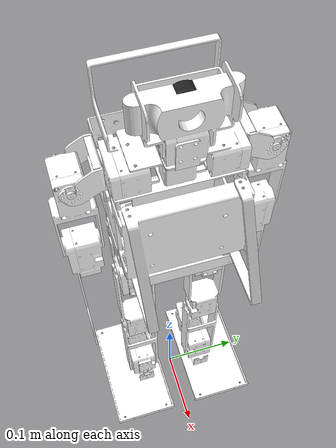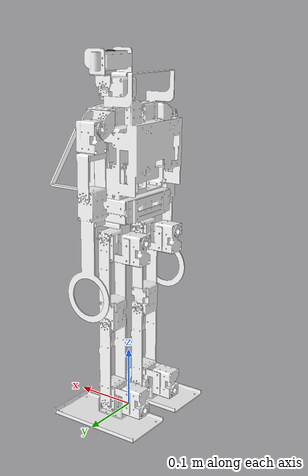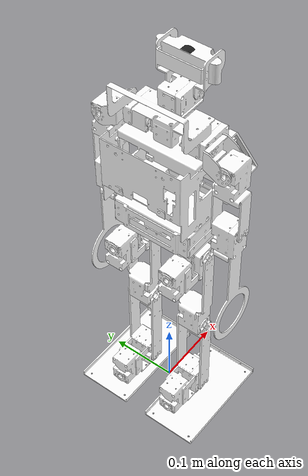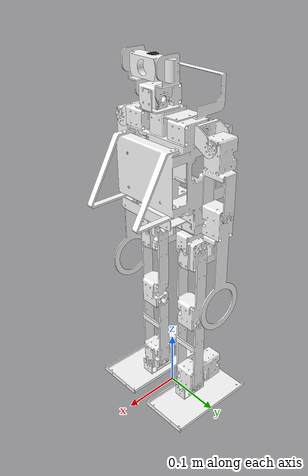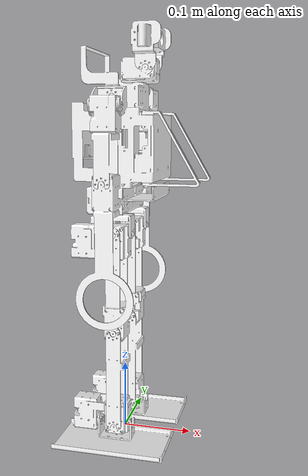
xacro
<?xml version="1.0"?>
<robot
  name="kidsize" xmlns:xacro="http://www.ros.org/wiki/xacro">
	<xacro:property name="pi" value="3.14159265359" />
	<xacro:property name="deg" value="${pi/180}" />
		<material name="black">
			<color rgba="0.1 0.1 0.1 1" />
		</material>
		<material name="white">
			<color rgba="0.8 0.8 0.8 1" />
		</material>
		<material name="clear">
			<color rgba="1.0 1.0 1.0 0.0" />
		</material>
		<material name="orange">
			<color rgba="${255/255} ${108/255} ${10/255} 1.0" />
		</material>
  <link
    name="waist_link">
    <inertial>
      <origin
        xyz="-0.010499 -4.8863E-05 0.35143"
        rpy="0 0 0" />
      <mass
        value="0.16736" />
      <inertia
        ixx="0.00024686"
        ixy="1.3146E-07"
        ixz="-2.4647E-06"
        iyy="8.0245E-05"
        iyz="1.7402E-08"
        izz="0.00028946" />
    </inertial>
    <visual>
      <origin
        xyz="0 0 0"
        rpy="0 0 0" />
      <geometry>
        <mesh
          filename="package://urdf/kidsize_model/robocup_robot/meshes/waist_link.STL" />
      </geometry>
      <material
        name="">
        <color
          rgba="1 1 1 1" />
      </material>
    </visual>
    <collision>
      <origin
        xyz="0 0 0"
        rpy="0 0 0" />
      <geometry>
        <mesh
          filename="package://urdf/kidsize_model/robocup_robot/meshes/waist_link.STL" />
      </geometry>
    </collision>
  </link>
  <link
    name="trunk_link">
    <inertial>
      <origin
        xyz="0.01024 0.00011325 0.070848"
        rpy="0 0 0" />
      <mass
        value="1" />
      <inertia
        ixx="0.0011025"
        ixy="2.5029E-06"
        ixz="6.7048E-05"
        iyy="0.00089946"
        iyz="2.1953E-07"
        izz="0.00071841" />
    </inertial>
    <visual>
      <origin
        xyz="0 0 0"
        rpy="0 0 0" />
      <geometry>
        <mesh
          filename="package://urdf/kidsize_model/robocup_robot/meshes/trunk_link.STL" />
      </geometry>
      <material
        name="">
        <color
          rgba="1 1 1 1" />
      </material>
    </visual>
    <collision>
      <origin
        xyz="0 0 0"
        rpy="0 0 0" />
      <geometry>
        <mesh
          filename="package://urdf/kidsize_model/robocup_robot/meshes/trunk_link.STL" />
      </geometry>
    </collision>
  </link>
  <joint
    name="waist_yaw_joint"
    type="revolute">
    <origin
      xyz="-0.00045 0 0.3865"
      rpy="0 0 0" />
    <parent
      link="waist_link" />
    <child
      link="trunk_link" />
    <axis
      xyz="0 0 1" />
    <limit
      lower="${-pi}"
      upper="${pi}"
      effort="100"
      velocity="5" />
    <dynamics
      friction="0.7"
      damping="0.1" />
  </joint>
  <link
    name="left_shoulder_link">
    <inertial>
      <origin
        xyz="-3.72604127105386E-06 0.0297911074033573 -0.00461915163355214"
        rpy="0 0 0" />
      <mass
        value="0.00596009981158904" />
      <inertia
        ixx="1.26246219599389E-06"
        ixy="-1.72427552349869E-11"
        ixz="6.85742889803387E-12"
        iyy="2.28404971724678E-06"
        iyz="3.17827997088839E-07"
        izz="2.37194480329819E-06" />
    </inertial>
    <visual>
      <origin
        xyz="0 0 0"
        rpy="0 0 0" />
      <geometry>
        <mesh
          filename="package://urdf/kidsize_model/robocup_robot/meshes/left_shoulder_link.STL" />
      </geometry>
      <material
        name="">
        <color
          rgba="1 1 1 1" />
      </material>
    </visual>
    <collision>
      <origin
        xyz="0 0 0"
        rpy="0 0 0" />
      <geometry>
        <mesh
          filename="package://urdf/kidsize_model/robocup_robot/meshes/left_shoulder_link.STL" />
      </geometry>
    </collision>
  </link>
  <joint
    name="left_shoulder_pitch_joint"
    type="revolute">
    <origin
      xyz="0 0.043997 0.10474"
      rpy="0 0 0" />
    <parent
      link="trunk_link" />
    <child
      link="left_shoulder_link" />
    <axis
      xyz="0 1 0" />
    <limit
      lower="${-pi}"
      upper="${pi}"
      effort="100"
      velocity="5" />
    <dynamics
      friction="0.7"
      damping="0.1" />
  </joint>
  <link
    name="left_upper_arm_link">
    <inertial>
      <origin
        xyz="0.000678411211435796 0.000489810124291307 -0.0191217777296809"
        rpy="0 0 0" />
      <mass
        value="0.0510794115590112" />
      <inertia
        ixx="3.1313340207507E-05"
        ixy="-6.57973357844028E-12"
        ixz="-3.53618283019284E-07"
        iyy="3.06157554760573E-05"
        iyz="2.63047056443396E-10"
        izz="9.80852784205324E-06" />
    </inertial>
    <visual>
      <origin
        xyz="0 0 0"
        rpy="0 0 0" />
      <geometry>
        <mesh
          filename="package://urdf/kidsize_model/robocup_robot/meshes/left_upper_arm_link.STL" />
      </geometry>
      <material
        name="">
        <color
          rgba="1 1 1 1" />
      </material>
    </visual>
    <collision>
      <origin
        xyz="0 0 0"
        rpy="0 0 0" />
      <geometry>
        <mesh
          filename="package://urdf/kidsize_model/robocup_robot/meshes/left_upper_arm_link.STL" />
      </geometry>
    </collision>
  </link>
  <joint
    name="left_upper_arm_roll_joint"
    type="revolute">
    <origin
      xyz="0 0.04851 -0.011774"
      rpy="0 0 0" />
    <parent
      link="left_shoulder_link" />
    <child
      link="left_upper_arm_link" />
    <axis
      xyz="1 0 0" />
    <limit
      lower="${-pi}"
      upper="${pi}"
      effort="100"
      velocity="5" />
    <dynamics
      friction="0.7"
      damping="0.1" />
  </joint>
  <link
    name="left_elbow_link">
    <inertial>
      <origin
        xyz="-0.000489816928373502 0.0024374519516502 -0.0293208681909612"
        rpy="0 0 0" />
      <mass
        value="0.0529778400197291" />
      <inertia
        ixx="0.000109530121626401"
        ixy="2.36402125251114E-11"
        ixz="-3.61965391083585E-10"
        iyy="0.000110422928141888"
        iyz="7.78807652504947E-06"
        izz="1.08976885049728E-05" />
    </inertial>
    <visual>
      <origin
        xyz="0 0 0"
        rpy="0 0 0" />
      <geometry>
        <mesh
          filename="package://urdf/kidsize_model/robocup_robot/meshes/left_botton_arm_link.STL" />
      </geometry>
      <material
        name="">
        <color
          rgba="1 1 1 1" />
      </material>
    </visual>
    <collision>
      <origin
        xyz="0 0 0"
        rpy="0 0 0" />
      <geometry>
        <mesh
          filename="package://urdf/kidsize_model/robocup_robot/meshes/left_botton_arm_link.STL" />
      </geometry>
    </collision>
  </link>
  <joint
    name="left_elbow_pitch_joint"
    type="revolute">
    <origin
      xyz="0.00049 0.00049 -0.10025"
      rpy="0 0 0" />
    <parent
      link="left_upper_arm_link" />
    <child
      link="left_elbow_link" />
    <axis
      xyz="0 1 0" />
    <limit
      lower="${-pi}"
      upper="${pi}"
      effort="100"
      velocity="5" />
    <dynamics
      friction="0.7"
      damping="0.1" />
  </joint>
  <link
    name="right_shoulder_link">
    <inertial>
      <origin
        xyz="3.7260412035388E-06 -0.0297911074033573 -0.00363915163355155"
        rpy="0 0 0" />
      <mass
        value="0.005960099811589" />
      <inertia
        ixx="1.26246219599387E-06"
        ixy="-1.72427551985748E-11"
        ixz="-6.85742905110232E-12"
        iyy="2.28404971724675E-06"
        iyz="-3.17827997088837E-07"
        izz="2.37194480329818E-06" />
    </inertial>
    <visual>
      <origin
        xyz="0 0 0"
        rpy="0 0 0" />
      <geometry>
        <mesh
          filename="package://urdf/kidsize_model/robocup_robot/meshes/right_shoulder_link.STL" />
      </geometry>
      <material
        name="">
        <color
          rgba="1 1 1 1" />
      </material>
    </visual>
    <collision>
      <origin
        xyz="0 0 0"
        rpy="0 0 0" />
      <geometry>
        <mesh
          filename="package://urdf/kidsize_model/robocup_robot/meshes/right_shoulder_link.STL" />
      </geometry>
    </collision>
  </link>
  <joint
    name="right_shoulder_pitch_joint"
    type="revolute">
    <origin
      xyz="0 -0.044003 0.10376"
      rpy="0 0 0" />
    <parent
      link="trunk_link" />
    <child
      link="right_shoulder_link" />
    <axis
      xyz="0 -1 0" />
    <limit
      lower="${-pi}"
      upper="${pi}"
      effort="100"
      velocity="5" />
    <dynamics
      friction="0.7"
      damping="0.1" />
  </joint>
  <link
    name="right_upper_arm_link">
    <inertial>
      <origin
        xyz="0.000678411211443852 -0.000490189875708882 -0.0191217777296777"
        rpy="0 0 0" />
      <mass
        value="0.0510794115590111" />
      <inertia
        ixx="3.13133402075077E-05"
        ixy="-6.57973359766917E-12"
        ixz="-3.53618283010164E-07"
        iyy="3.06157554760577E-05"
        iyz="2.63047055845698E-10"
        izz="9.80852784205294E-06" />
    </inertial>
    <visual>
      <origin
        xyz="0 0 0"
        rpy="0 0 0" />
      <geometry>
        <mesh
          filename="package://urdf/kidsize_model/robocup_robot/meshes/right_upper_arm_link.STL" />
      </geometry>
      <material
        name="">
        <color
          rgba="1 1 1 1" />
      </material>
    </visual>
    <collision>
      <origin
        xyz="0 0 0"
        rpy="0 0 0" />
      <geometry>
        <mesh
          filename="package://urdf/kidsize_model/robocup_robot/meshes/right_upper_arm_link.STL" />
      </geometry>
    </collision>
  </link>
  <joint
    name="right_upper_arm_roll_joint"
    type="revolute">
    <origin
      xyz="0 -0.04851 -0.010794"
      rpy="0 0 0" />
    <parent
      link="right_shoulder_link" />
    <child
      link="right_upper_arm_link" />
    <axis
      xyz="1 0 0" />
    <limit
      lower="${-pi}"
      upper="${pi}"
      effort="100"
      velocity="5" />
    <dynamics
      friction="0.7"
      damping="0.1" />
  </joint>
  <link
    name="right_elbow_link">
    <inertial>
      <origin
        xyz="0.000489816928379138 -0.00243745195164802 -0.0293208681909606"
        rpy="0 0 0" />
      <mass
        value="0.052977840019729" />
      <inertia
        ixx="0.0001095301216264"
        ixy="2.36402135704461E-11"
        ixz="3.61965404306589E-10"
        iyy="0.000110422928141886"
        iyz="-7.78807652505102E-06"
        izz="1.0897688504973E-05" />
    </inertial>
    <visual>
      <origin
        xyz="0 0 0"
        rpy="0 0 0" />
      <geometry>
        <mesh
          filename="package://urdf/kidsize_model/robocup_robot/meshes/right_bottom_arm_link.STL" />
      </geometry>
      <material
        name="">
        <color
          rgba="1 1 1 1" />
      </material>
    </visual>
    <collision>
      <origin
        xyz="0 0 0"
        rpy="0 0 0" />
      <geometry>
        <mesh
          filename="package://urdf/kidsize_model/robocup_robot/meshes/right_bottom_arm_link.STL" />
      </geometry>
    </collision>
  </link>
  <joint
    name="right_elbow_pitch_joint"
    type="revolute">
    <origin
      xyz="-0.00049 -0.00049 -0.10025"
      rpy="0 0 0" />
    <parent
      link="right_upper_arm_link" />
    <child
      link="right_elbow_link" />
    <axis
      xyz="0 -1 0" />
    <limit
      lower="${-pi}"
      upper="${pi}"
      effort="100"
      velocity="5" />
    <dynamics
      friction="0.7"
      damping="0.1" />
  </joint>
  <link
    name="neck_link">
    <inertial>
      <origin
        xyz="0.00201687473330259 -0.0012115472181778 0.036708354964159"
        rpy="0 0 0" />
      <mass
        value="0.0480257488384161" />
      <inertia
        ixx="8.32535476251775E-06"
        ixy="9.75804509458229E-08"
        ixz="-9.52075626558979E-09"
        iyy="1.34941975576473E-05"
        iyz="4.47591758359128E-08"
        izz="1.41502914655468E-05" />
    </inertial>
    <visual>
      <origin
        xyz="0 0 0"
        rpy="0 0 0" />
      <geometry>
        <mesh
          filename="package://urdf/kidsize_model/robocup_robot/meshes/neck_link.STL" />
      </geometry>
      <material
        name="">
        <color
          rgba="1 1 1 1" />
      </material>
    </visual>
    <collision>
      <origin
        xyz="0 0 0"
        rpy="0 0 0" />
      <geometry>
        <mesh
          filename="package://urdf/kidsize_model/robocup_robot/meshes/neck_link.STL" />
      </geometry>
    </collision>
  </link>
  <joint
    name="neck_yaw_joint"
    type="revolute">
    <origin
      xyz="0.021 0.00048672 0.107"
      rpy="0 0 0" />
    <parent
      link="trunk_link" />
    <child
      link="neck_link" />
    <axis
      xyz="0 0 1" />
    <limit
      lower="${-pi}"
      upper="${pi}"
      effort="100"
      velocity="5" />
    <dynamics
      friction="0.7"
      damping="0.1" />
  </joint>
  <link
    name="head_link">
    <inertial>
      <origin
        xyz="0.00279758860877225 -0.000166576430221316 0.0369137134187916"
        rpy="0 0 0" />
      <mass
        value="0.0547968386535072" />
      <inertia
        ixx="3.708393532027E-05"
        ixy="1.27051933602407E-08"
        ixz="-3.34075520714619E-07"
        iyy="9.72906306189788E-06"
        iyz="1.48193099247116E-08"
        izz="3.49367049594159E-05" />
    </inertial>
    <visual>
      <origin
        xyz="0 0 0"
        rpy="0 0 0" />
      <geometry>
        <mesh
          filename="package://urdf/kidsize_model/robocup_robot/meshes/head_link.STL" />
      </geometry>
      <material
        name="">
        <color
          rgba="1 1 1 1" />
      </material>
    </visual>
    <collision>
      <origin
        xyz="0 0 0"
        rpy="0 0 0" />
      <geometry>
        <mesh
          filename="package://urdf/kidsize_model/robocup_robot/meshes/head_link.STL" />
      </geometry>
    </collision>
  </link>
  <joint
    name="head_pitch_joint"
    type="revolute">
    <origin
      xyz="0.01375 -0.00049 0.03849"
      rpy="0 0 0" />
    <parent
      link="neck_link" />
    <child
      link="head_link" />
    <axis
      xyz="0 -1 0" />
    <limit
      lower="${-pi}"
      upper="${pi}"
      effort="100"
      velocity="5" />
    <dynamics
      friction="0.7"
      damping="0.1" />
  </joint>
  <link
    name="left_hip_yaw_link">
    <inertial>
      <origin
        xyz="-0.00211352320941255 4.88081478997038E-07 -0.0265544284135782"
        rpy="0 0 0" />
      <mass
        value="0.0144640349261772" />
      <inertia
        ixx="1.95724733538057E-06"
        ixy="4.58987327610197E-12"
        ixz="6.50767372021941E-09"
        iyy="5.96616991854585E-06"
        iyz="-3.51749711365673E-10"
        izz="5.96957701911896E-06" />
    </inertial>
    <visual>
      <origin
        xyz="0 0 0"
        rpy="0 0 0" />
      <geometry>
        <mesh
          filename="package://urdf/kidsize_model/robocup_robot/meshes/left_hip_yaw_link.STL" />
      </geometry>
      <material
        name="">
        <color
          rgba="1 1 1 1" />
      </material>
    </visual>
    <collision>
      <origin
        xyz="0 0 0"
        rpy="0 0 0" />
      <geometry>
        <mesh
          filename="package://urdf/kidsize_model/robocup_robot/meshes/left_hip_yaw_link.STL" />
      </geometry>
    </collision>
  </link>
  <joint
    name="left_hip_yaw_joint"
    type="revolute">
    <origin
      xyz="5E-05 0.043997 0.3515"
      rpy="0 0 0" />
    <parent
      link="waist_link" />
    <child
      link="left_hip_yaw_link" />
    <axis
      xyz="0 0 -1" />
    <limit
      lower="${-pi}"
      upper="${pi}"
      effort="100"
      velocity="5" />
    <dynamics
      friction="0.7"
      damping="0.1" />
  </joint>
  <link
    name="left_hip_roll_link">
    <inertial>
      <origin
        xyz="0.0240821846618702 0.000375718387425061 -0.0118862254520091"
        rpy="0 0 0" />
      <mass
        value="0.0930179630649924" />
      <inertia
        ixx="2.44594850592089E-05"
        ixy="-7.33758600797145E-07"
        ixz="-2.98512780056426E-07"
        iyy="7.10126175528167E-05"
        iyz="-1.02692936689928E-07"
        izz="6.18808778005977E-05" />
    </inertial>
    <visual>
      <origin
        xyz="0 0 0"
        rpy="0 0 0" />
      <geometry>
        <mesh
          filename="package://urdf/kidsize_model/robocup_robot/meshes/left_hip_roll_link.STL" />
      </geometry>
      <material
        name="">
        <color
          rgba="1 1 1 1" />
      </material>
    </visual>
    <collision>
      <origin
        xyz="0 0 0"
        rpy="0 0 0" />
      <geometry>
        <mesh
          filename="package://urdf/kidsize_model/robocup_robot/meshes/left_hip_roll_link.STL" />
      </geometry>
    </collision>
  </link>
  <joint
    name="left_hip_roll_joint"
    type="revolute">
    <origin
      xyz="-0.04575 0 -0.04592"
      rpy="0 0 0" />
    <parent
      link="left_hip_yaw_link" />
    <child
      link="left_hip_roll_link" />
    <axis
      xyz="1 0 0" />
    <limit
      lower="${-pi}"
      upper="${pi}"
      effort="100"
      velocity="5" />
    <dynamics
      friction="0.7"
      damping="0.1" />
  </joint>
  <link
    name="left_thigh_link">
    <inertial>
      <origin
        xyz="3.51695302039302E-05 0.000384502459421676 -0.110700224525888"
        rpy="0 0 0" />
      <mass
        value="0.0608305695796996" />
      <inertia
        ixx="8.45358036696472E-05"
        ixy="-6.41631917623483E-10"
        ixz="6.22630915145868E-08"
        iyy="7.86582372896446E-05"
        iyz="5.07778819497434E-07"
        izz="1.38630750590701E-05" />
    </inertial>
    <visual>
      <origin
        xyz="0 0 0"
        rpy="0 0 0" />
      <geometry>
        <mesh
          filename="package://urdf/kidsize_model/robocup_robot/meshes/left_thigh_link.STL" />
      </geometry>
      <material
        name="">
        <color
          rgba="1 1 1 1" />
      </material>
    </visual>
    <collision>
      <origin
        xyz="0 0 0"
        rpy="0 0 0" />
      <geometry>
        <mesh
          filename="package://urdf/kidsize_model/robocup_robot/meshes/left_thigh_link.STL" />
      </geometry>
    </collision>
  </link>
  <joint
    name="left_hip_pitch_joint"
    type="revolute">
    <origin
      xyz="0.045253 0 0"
      rpy="0 0 0" />
    <parent
      link="left_hip_roll_link" />
    <child
      link="left_thigh_link" />
    <axis
      xyz="0 1 0" />
    <limit
      lower="${-pi}"
      upper="${pi}"
      effort="100"
      velocity="5" />
    <dynamics
      friction="0.7"
      damping="0.1" />
  </joint>
  <link
    name="left_shank_link">
    <inertial>
      <origin
        xyz="0.00135328032358438 -9.71445146547012E-16 -0.0684049310334947"
        rpy="0 0 0" />
      <mass
        value="0.0185165645195991" />
      <inertia
        ixx="3.5227906280466E-05"
        ixy="-2.04289483564695E-20"
        ixz="-3.5731593672538E-07"
        iyy="2.86224717603839E-05"
        iyz="-2.35182737318463E-19"
        izz="8.29639288223421E-06" />
    </inertial>
    <visual>
      <origin
        xyz="0 0 0"
        rpy="0 0 0" />
      <geometry>
        <mesh
          filename="package://urdf/kidsize_model/robocup_robot/meshes/left_shank_link.STL" />
      </geometry>
      <material
        name="">
        <color
          rgba="1 1 1 1" />
      </material>
    </visual>
    <collision>
      <origin
        xyz="0 0 0"
        rpy="0 0 0" />
      <geometry>
        <mesh
          filename="package://urdf/kidsize_model/robocup_robot/meshes/left_shank_link.STL" />
      </geometry>
    </collision>
  </link>
  <joint
    name="left_knee_pitch_joint"
    type="revolute">
    <origin
      xyz="-0.00043078 -0.0002634 -0.14"
      rpy="0 0 0" />
    <parent
      link="left_thigh_link" />
    <child
      link="left_shank_link" />
    <axis
      xyz="0 1 0" />
    <limit
      lower="${-pi}"
      upper="${pi}"
      effort="100"
      velocity="5" />
    <dynamics
      friction="0.7"
      damping="0.1" />
  </joint>
  <link
    name="left_ankle_link">
    <inertial>
      <origin
        xyz="-0.0219569888159379 0.00038538235922847 0.0119419740261193"
        rpy="0 0 0" />
      <mass
        value="0.0899432560542777" />
      <inertia
        ixx="2.38656072716007E-05"
        ixy="-7.77630874358381E-07"
        ixz="1.02521827360255E-07"
        iyy="6.60530411092164E-05"
        iyz="1.05011066744187E-07"
        izz="5.73342777001997E-05" />
    </inertial>
    <visual>
      <origin
        xyz="0 0 0"
        rpy="0 0 0" />
      <geometry>
        <mesh
          filename="package://urdf/kidsize_model/robocup_robot/meshes/left_ankle_link.STL" />
      </geometry>
      <material
        name="">
        <color
          rgba="1 1 1 1" />
      </material>
    </visual>
    <collision>
      <origin
        xyz="0 0 0"
        rpy="0 0 0" />
      <geometry>
        <mesh
          filename="package://urdf/kidsize_model/robocup_robot/meshes/left_ankle_link.STL" />
      </geometry>
    </collision>
  </link>
  <joint
    name="left_ankle_pitch_joint"
    type="revolute">
    <origin
      xyz="-6.2501E-05 0 -0.14"
      rpy="0 0 0" />
    <parent
      link="left_shank_link" />
    <child
      link="left_ankle_link" />
    <axis
      xyz="0 1 0" />
    <limit
      lower="${-pi}"
      upper="${pi}"
      effort="100"
      velocity="5" />
    <dynamics
      friction="0.7"
      damping="0.1" />
  </joint>
  <link
    name="left_foot_link">
    <inertial>
      <origin
        xyz="0.046660793206198 0.0137594635413675 -0.023028116308786"
        rpy="0 0 0" />
      <mass
        value="0.0356470366355454" />
      <inertia
        ixx="2.42742010000648E-05"
        ixy="-1.8395096882967E-07"
        ixz="-4.8220679118982E-07"
        iyy="7.46265449790505E-05"
        iyz="3.97748194719772E-07"
        izz="9.7840186920826E-05" />
    </inertial>
    <visual>
      <origin
        xyz="0 0 0"
        rpy="0 0 0" />
      <geometry>
        <mesh
          filename="package://urdf/kidsize_model/robocup_robot/meshes/left_foot_link.STL" />
      </geometry>
      <material
        name="">
        <color
          rgba="1 1 1 1" />
      </material>
    </visual>
    <collision>
      <origin
        xyz="0 0 0"
        rpy="0 0 0" />
      <geometry>
        <mesh
          filename="package://urdf/kidsize_model/robocup_robot/meshes/left_foot_link.STL" />
      </geometry>
    </collision>
  </link>
  <joint
    name="left_ankle_roll_joint"
    type="revolute">
    <origin
      xyz="-0.04476 0.00049 0"
      rpy="0 0 0" />
    <parent
      link="left_ankle_link" />
    <child
      link="left_foot_link" />
    <axis
      xyz="1 0 0" />
    <limit
      lower="${-pi}"
      upper="${pi}"
      effort="100"
      velocity="5" />
    <dynamics
      friction="0.7"
      damping="0.1" />
  </joint>
  <link
    name="right_hip_yaw_link">
    <inertial>
      <origin
        xyz="0 0 0"
        rpy="0 0 0" />
      <mass
        value="0.0144640349261772" />
      <inertia
        ixx="1.95724733538057E-06"
        ixy="4.58987327610197E-12"
        ixz="6.50767372021941E-09"
        iyy="5.96616991854585E-06"
        iyz="-3.51749711365673E-10"
        izz="5.96957701911896E-06" />
    </inertial>
    <visual>
      <origin
        xyz="0 0 0"
        rpy="0 0 0" />
      <geometry>
        <mesh
          filename="package://urdf/kidsize_model/robocup_robot/meshes/right_hip_yaw_link.STL" />
      </geometry>
      <material
        name="">
        <color
          rgba="1 1 1 1" />
      </material>
    </visual>
    <collision>
      <origin
        xyz="0 0 0"
        rpy="0 0 0" />
      <geometry>
        <mesh
          filename="package://urdf/kidsize_model/robocup_robot/meshes/right_hip_yaw_link.STL" />
      </geometry>
    </collision>
  </link>
  <joint
    name="right_hip_yaw_joint"
    type="revolute">
    <origin
      xyz="5E-05 -0.04401 0.3515"
      rpy="0 0 0" />
    <parent
      link="waist_link" />
    <child
      link="right_hip_yaw_link" />
    <axis
      xyz="0 0 -1" />
    <limit
      lower="${-pi}"
      upper="${pi}"
      effort="100"
      velocity="5" />
    <dynamics
      friction="0.7"
      damping="0.1" />
  </joint>
  <link
    name="right_hip_roll_link">
    <inertial>
      <origin
        xyz="0.024081976127104 -0.00036936018306593 -0.0118862254520065"
        rpy="0 0 0" />
      <mass
        value="0.0930179630649925" />
      <inertia
        ixx="2.4459470606564E-05"
        ixy="7.3329869546593E-07"
        ixz="-2.98127037426519E-07"
        iyy="7.10117963442653E-05"
        iyz="1.0307867932841E-07"
        izz="6.18800421393998E-05" />
    </inertial>
    <visual>
      <origin
        xyz="0 0 0"
        rpy="0 0 0" />
      <geometry>
        <mesh
          filename="package://urdf/kidsize_model/robocup_robot/meshes/right_hip_roll_link.STL" />
      </geometry>
      <material
        name="">
        <color
          rgba="1 1 1 1" />
      </material>
    </visual>
    <collision>
      <origin
        xyz="0 0 0"
        rpy="0 0 0" />
      <geometry>
        <mesh
          filename="package://urdf/kidsize_model/robocup_robot/meshes/right_hip_roll_link.STL" />
      </geometry>
    </collision>
  </link>
  <joint
    name="right_hip_roll_joint"
    type="revolute">
    <origin
      xyz="-0.04575 0 -0.04592"
      rpy="0 0 0" />
    <parent
      link="right_hip_yaw_link" />
    <child
      link="right_hip_roll_link" />
    <axis
      xyz="1 0 0" />
    <limit
      lower="${-pi}"
      upper="${pi}"
      effort="100"
      velocity="5" />
    <dynamics
      friction="0.7"
      damping="0.1" />
  </joint>
  <link
    name="right_thigh_link">
    <inertial>
      <origin
        xyz="9.14754809194412E-05 -0.000384502459423813 -0.110700196327749"
        rpy="0 0 0" />
      <mass
        value="0.0608305695796996" />
      <inertia
        ixx="8.45357339916312E-05"
        ixy="8.55753882403168E-10"
        ixz="9.45372250016478E-08"
        iyy="7.86582387237903E-05"
        iyz="-5.07778482451333E-07"
        izz="1.38631461712319E-05" />
    </inertial>
    <visual>
      <origin
        xyz="0 0 0"
        rpy="0 0 0" />
      <geometry>
        <mesh
          filename="package://urdf/kidsize_model/robocup_robot/meshes/right_thigh_link.STL" />
      </geometry>
      <material
        name="">
        <color
          rgba="1 1 1 1" />
      </material>
    </visual>
    <collision>
      <origin
        xyz="0 0 0"
        rpy="0 0 0" />
      <geometry>
        <mesh
          filename="package://urdf/kidsize_model/robocup_robot/meshes/right_thigh_link.STL" />
      </geometry>
    </collision>
  </link>
  <joint
    name="right_hip_pitch_joint"
    type="revolute">
    <origin
      xyz="0.045247 0 0"
      rpy="0 0 0" />
    <parent
      link="right_hip_roll_link" />
    <child
      link="right_thigh_link" />
    <axis
      xyz="0 -1 0" />
    <limit
      lower="${-pi}"
      upper="${pi}"
      effort="100"
      velocity="5" />
    <dynamics
      friction="0.7"
      damping="0.1" />
  </joint>
  <link
    name="right_shank_link">
    <inertial>
      <origin
        xyz="0.000890535102586326 -8.74300631892311E-16 -0.0684043200665534"
        rpy="0 0 0" />
      <mass
        value="0.0185165645195991" />
      <inertia
        ixx="3.52282199488241E-05"
        ixy="2.76811973081332E-20"
        ixz="-3.45292653644865E-07"
        iyy="2.8622471760384E-05"
        iyz="-1.62430685259345E-19"
        izz="8.29607921387611E-06" />
    </inertial>
    <visual>
      <origin
        xyz="0 0 0"
        rpy="0 0 0" />
      <geometry>
        <mesh
          filename="package://urdf/kidsize_model/robocup_robot/meshes/right_shank_link.STL" />
      </geometry>
      <material
        name="">
        <color
          rgba="1 1 1 1" />
      </material>
    </visual>
    <collision>
      <origin
        xyz="0 0 0"
        rpy="0 0 0" />
      <geometry>
        <mesh
          filename="package://urdf/kidsize_model/robocup_robot/meshes/right_shank_link.STL" />
      </geometry>
    </collision>
  </link>
  <joint
    name="right_knee_pitch_joint"
    type="revolute">
    <origin
      xyz="0.00013157 0.0002634 -0.14"
      rpy="0 0 0" />
    <parent
      link="right_thigh_link" />
    <child
      link="right_shank_link" />
    <axis
      xyz="0 -1 0" />
    <limit
      lower="${-pi}"
      upper="${pi}"
      effort="100"
      velocity="5" />
    <dynamics
      friction="0.7"
      damping="0.1" />
  </joint>
  <link
    name="right_ankle_link">
    <inertial>
      <origin
        xyz="-0.0211710987076901 -0.000372435017864603 0.0118862254520089"
        rpy="0 0 0" />
      <mass
        value="0.0930179630649924" />
      <inertia
        ixx="2.44594850592089E-05"
        ixy="7.33758600796815E-07"
        ixz="2.98512780055937E-07"
        iyy="7.10126175528155E-05"
        iyz="-1.02692936689923E-07"
        izz="6.18808778005966E-05" />
    </inertial>
    <visual>
      <origin
        xyz="0 0 0"
        rpy="0 0 0" />
      <geometry>
        <mesh
          filename="package://urdf/kidsize_model/robocup_robot/meshes/right_ankle_link.STL" />
      </geometry>
      <material
        name="">
        <color
          rgba="1 1 1 1" />
      </material>
    </visual>
    <collision>
      <origin
        xyz="0 0 0"
        rpy="0 0 0" />
      <geometry>
        <mesh
          filename="package://urdf/kidsize_model/robocup_robot/meshes/right_ankle_link.STL" />
      </geometry>
    </collision>
  </link>
  <joint
    name="right_ankle_pitch_joint"
    type="revolute">
    <origin
      xyz="0 0 -0.14"
      rpy="0 0 0" />
    <parent
      link="right_shank_link" />
    <child
      link="right_ankle_link" />
    <axis
      xyz="0 -1 0" />
    <limit
      lower="${-pi}"
      upper="${pi}"
      effort="100"
      velocity="5" />
    <dynamics
      friction="0.7"
      damping="0.1" />
  </joint>
  <link
    name="right_foot_link">
    <inertial>
      <origin
        xyz="0.0466607932062022 -0.01425274691093 -0.0230281163087871"
        rpy="0 0 0" />
      <mass
        value="0.0356470366355454" />
      <inertia
        ixx="2.42742010000649E-05"
        ixy="1.83950968829657E-07"
        ixz="-4.82206791190574E-07"
        iyy="7.46265449790505E-05"
        iyz="-3.97748194719387E-07"
        izz="9.7840186920826E-05" />
    </inertial>
    <visual>
      <origin
        xyz="0 0 0"
        rpy="0 0 0" />
      <geometry>
        <mesh
          filename="package://urdf/kidsize_model/robocup_robot/meshes/right_foot_link.STL" />
      </geometry>
      <material
        name="">
        <color
          rgba="1 1 1 1" />
      </material>
    </visual>
    <collision>
      <origin
        xyz="0 0 0"
        rpy="0 0 0" />
      <geometry>
        <mesh
          filename="package://urdf/kidsize_model/robocup_robot/meshes/right_foot_link.STL" />
      </geometry>
    </collision>
  </link>
  <joint
    name="right_ankle_roll_joint"
    type="revolute">
    <origin
      xyz="-0.045253 0 0"
      rpy="0 0 0" />
    <parent
      link="right_ankle_link" />
    <child
      link="right_foot_link" />
    <axis
      xyz="1 0 0" />
    <limit
      lower="${-pi}"
      upper="${pi}"
      effort="100"
      velocity="5" />
    <dynamics
      friction="0.7"
      damping="0.1" />
  </joint>

  <joint name="camera_joint" type="fixed">
    <axis xyz="0 1 0" />
    <origin xyz="0.0 0.0 0.04" rpy="0 0 0"/>
    <parent link="head_link"/>
    <child link="camera_link"/>
  </joint>

  <!-- Camera -->
  <link name="camera_link">
    <collision>
      <origin xyz="-0.0 0 0" rpy="0 1.5708 0"/>
      <geometry>
    <cylinder radius="0.0145" length="0.01"/>
      </geometry>
    </collision>

    <visual>
      <origin xyz="-0.0 0 0" rpy="0 1.5708 0"/>
      <geometry>
    <cylinder radius="0.0145" length="0.01"/>
      </geometry>
    </visual>

    <inertial>
      <mass value="1e-5" />
      <origin xyz="0 0 0" rpy="0 0 0"/>
      <inertia ixx="1e-6" ixy="0" ixz="0" iyy="1e-6" iyz="0" izz="1e-6" />
    </inertial>
  </link>

		<transmission name="right_hip_yaw_transmission">
			<type>transmission_interface/SimpleTransmission</type>
			<joint name="right_hip_yaw_joint" >
                <hardwareInterface>hardware_interface/EffortJointInterface</hardwareInterface>

   </joint>
			<actuator name="right_hip_yaw_joint">
				<mechanicalReduction>1</mechanicalReduction>
			</actuator>
		</transmission>
		<transmission name="right_hip_roll_transmission">
			<type>transmission_interface/SimpleTransmission</type>
            <joint name="right_hip_roll_joint" >
				<hardwareInterface>hardware_interface/EffortJointInterface</hardwareInterface>

   </joint>
			<actuator name="right_hip_roll_joint">
				<mechanicalReduction>1</mechanicalReduction>
			</actuator>
		</transmission>
		<transmission name="right_hip_pitch_transmission">
			<type>transmission_interface/SimpleTransmission</type>
            <joint name="right_hip_pitch_joint" >
				<hardwareInterface>hardware_interface/EffortJointInterface</hardwareInterface>

   </joint>
			<actuator name="right_hip_pitch_joint">
				<mechanicalReduction>1</mechanicalReduction>
			</actuator>
		</transmission>
		<transmission name="right_knee_pitch_transmission">
			<type>transmission_interface/SimpleTransmission</type>
            <joint name="right_knee_pitch_joint" >
				<hardwareInterface>hardware_interface/EffortJointInterface</hardwareInterface>

   </joint>
			<actuator name="right_knee_pitch_joint">
				<mechanicalReduction>1</mechanicalReduction>
			</actuator>
		</transmission>
		<transmission name="right_ankle_pitch_transmission">
			<type>transmission_interface/SimpleTransmission</type>
            <joint name="right_ankle_pitch_joint" >
				<hardwareInterface>hardware_interface/EffortJointInterface</hardwareInterface>

   </joint>
			<actuator name="right_ankle_pitch_joint">
				<mechanicalReduction>1</mechanicalReduction>
			</actuator>
		</transmission>
		<transmission name="right_ankle_roll_transmission">
			<type>transmission_interface/SimpleTransmission</type>
            <joint name="right_ankle_roll_joint" >
                <hardwareInterface>hardware_interface/EffortJointInterface</hardwareInterface>

   </joint>
			<actuator name="right_ankle_roll_joint">
				<mechanicalReduction>1</mechanicalReduction>
			</actuator>
		</transmission>
		<transmission name="left_hip_yaw_transmission">
			<type>transmission_interface/SimpleTransmission</type>
            <joint name="left_hip_yaw_joint" >
				<hardwareInterface>hardware_interface/EffortJointInterface</hardwareInterface>

   </joint>
			<actuator name="left_hip_yaw_joint">
				<mechanicalReduction>1</mechanicalReduction>
			</actuator>
		</transmission>
		<transmission name="left_hip_roll_transmission">
			<type>transmission_interface/SimpleTransmission</type>
            <joint name="left_hip_roll_joint" >
				<hardwareInterface>hardware_interface/EffortJointInterface</hardwareInterface>

   </joint>
			<actuator name="left_hip_roll_joint">
				<mechanicalReduction>1</mechanicalReduction>
			</actuator>
		</transmission>
		<transmission name="left_hip_pitch_transmission">
			<type>transmission_interface/SimpleTransmission</type>
            <joint name="left_hip_pitch_joint" >
				<hardwareInterface>hardware_interface/EffortJointInterface</hardwareInterface>

   </joint>
			<actuator name="left_hip_pitch_joint">
				<mechanicalReduction>1</mechanicalReduction>
			</actuator>
		</transmission>
		<transmission name="left_knee_pitch_transmission">
			<type>transmission_interface/SimpleTransmission</type>
            <joint name="left_knee_pitch_joint" >
				<hardwareInterface>hardware_interface/EffortJointInterface</hardwareInterface>

   </joint>
			<actuator name="left_knee_pitch_joint">
				<mechanicalReduction>1</mechanicalReduction>
			</actuator>
		</transmission>
		<transmission name="left_ankle_pitch_transmission">
			<type>transmission_interface/SimpleTransmission</type>
            <joint name="left_ankle_pitch_joint" >
				<hardwareInterface>hardware_interface/EffortJointInterface</hardwareInterface>

   </joint>
			<actuator name="left_ankle_pitch_joint">
				<mechanicalReduction>1</mechanicalReduction>
			</actuator>
		</transmission>
		<transmission name="left_ankle_roll_transmission">
			<type>transmission_interface/SimpleTransmission</type>
            <joint name="left_ankle_roll_joint" >
				<hardwareInterface>hardware_interface/EffortJointInterface</hardwareInterface>

   </joint>
			<actuator name="left_ankle_roll_joint">
				<mechanicalReduction>1</mechanicalReduction>
			</actuator>
		</transmission>
		<transmission name="right_shoulder_pitch_transmission">
			<type>transmission_interface/SimpleTransmission</type>
            <joint name="right_shoulder_pitch_joint" >
				<hardwareInterface>hardware_interface/EffortJointInterface</hardwareInterface>

   </joint>
			<actuator name="right_shoulder_pitch_joint">
				<mechanicalReduction>1</mechanicalReduction>
			</actuator>
		</transmission>
		<transmission name="right_shoulder_roll_transmission">
			<type>transmission_interface/SimpleTransmission</type>
            <joint name="right_upper_arm_roll_joint" >
				<hardwareInterface>hardware_interface/EffortJointInterface</hardwareInterface>

   </joint>
			<actuator name="right_upper_arm_roll_joint">
				<mechanicalReduction>1</mechanicalReduction>
			</actuator>
		</transmission>
		<transmission name="right_elbow_pitch_transmission">
			<type>transmission_interface/SimpleTransmission</type>
            <joint name="right_elbow_pitch_joint" >
				<hardwareInterface>hardware_interface/EffortJointInterface</hardwareInterface>

   </joint>
			<actuator name="right_elbow_pitch_joint">
				<mechanicalReduction>1</mechanicalReduction>
			</actuator>
		</transmission>
		<transmission name="left_shoulder_pitch_transmission">
			<type>transmission_interface/SimpleTransmission</type>
            <joint name="left_shoulder_pitch_joint" >
				<hardwareInterface>hardware_interface/EffortJointInterface</hardwareInterface>

   </joint>
			<actuator name="left_shoulder_pitch_joint">
				<mechanicalReduction>1</mechanicalReduction>
			</actuator>
		</transmission>
		<transmission name="left_shoulder_roll_transmission">
			<type>transmission_interface/SimpleTransmission</type>
            <joint name="left_upper_arm_roll_joint" >
				<hardwareInterface>hardware_interface/EffortJointInterface</hardwareInterface>

   </joint>
			<actuator name="left_upper_arm_roll_joint">
				<mechanicalReduction>1</mechanicalReduction>
			</actuator>
		</transmission>
		<transmission name="left_elbow_pitch_transmission">
			<type>transmission_interface/SimpleTransmission</type>
            <joint name="left_elbow_pitch_joint" >
				<hardwareInterface>hardware_interface/EffortJointInterface</hardwareInterface>

   </joint>
			<actuator name="left_elbow_pitch_joint">
				<mechanicalReduction>1</mechanicalReduction>
			</actuator>
		</transmission>
		<transmission name="neck_yaw_transmission">
			<type>transmission_interface/SimpleTransmission</type>
            <joint name="neck_yaw_joint" >
				<hardwareInterface>hardware_interface/EffortJointInterface</hardwareInterface>

   </joint>
			<actuator name="neck_yaw_joint">
				<mechanicalReduction>1</mechanicalReduction>
			</actuator>
		</transmission>
		<transmission name="head_pitch_transmission">
			<type>transmission_interface/SimpleTransmission</type>
            <joint name="head_pitch_joint" >
				<hardwareInterface>hardware_interface/EffortJointInterface</hardwareInterface>

   </joint>
			<actuator name="head_pitch_joint">
				<mechanicalReduction>1</mechanicalReduction>
			</actuator>
		</transmission>

                <transmission name="waist_yaw_transmission">
			<type>transmission_interface/SimpleTransmission</type>
            <joint name="waist_yaw_joint" >
				<hardwareInterface>hardware_interface/EffortJointInterface</hardwareInterface>

   </joint>
			<actuator name="waist_yaw_joint">
				<mechanicalReduction>1</mechanicalReduction>
			</actuator>
		</transmission>

		<!-- Gazebo configuration -->

		<gazebo>
			<plugin name="gazebo_ros_control" filename="libgazebo_ros_control.so">
				<robotNamespace>/robot1</robotNamespace>
				<legacyModeNS>true</legacyModeNS>
			</plugin>
		</gazebo>

<gazebo reference="camera_link">
<material>Gazebo/Black</material>
    <sensor type="camera" name="camera1">
      <visualize>1</visualize>
      <update_rate>30.0</update_rate>
      <camera name="head">
        <horizontal_fov>1.3962634</horizontal_fov>
        <image>
          <width>800</width>
          <height>600</height>
          <format>R8G8B8</format>
        </image>
        <clip>
          <near>0.2</near>
          <far>1000</far>
        </clip>
        <noise>
          <type>gaussian</type>
          <!-- Noise is sampled independently per pixel on each frame.
               That pixel's noise value is added to each of its color
               channels, which at that point lie in the range [0,1]. -->
          <mean>0.0</mean>
          <stddev>0.007</stddev>
        </noise>
      </camera>
      <plugin name="camera_controller" filename="libgazebo_ros_camera.so">
	<robotNamespace>/robot1</robotNamespace>
        <alwaysOn>true</alwaysOn>
        <updateRate>0.0</updateRate>
        <cameraName>/camera</cameraName>
        <imageTopicName>image_raw</imageTopicName>
        <cameraInfoTopicName>camera_info</cameraInfoTopicName>
        <frameName>camera_link</frameName>
        <hackBaseline>0.07</hackBaseline>
        <distortionK1>0.0</distortionK1>
        <distortionK2>0.0</distortionK2>
        <distortionK3>0.0</distortionK3>
        <distortionT1>0.0</distortionT1>
        <distortionT2>0.0</distortionT2>
      </plugin>
    </sensor>
</gazebo>

		<!-- Gazebo links -->
		<gazebo reference="trunk_link">
			<material>Gazebo/White</material>
		</gazebo>
                <gazebo reference="waist_link">
			<material>Gazebo/White</material>
		</gazebo>
		<gazebo reference="left_hip_yaw_link">
			<material>Gazebo/White</material>
		</gazebo>
		<gazebo reference="left_hip_roll_link">
			<material>Gazebo/Black</material>
		</gazebo>
		<gazebo reference="left_thigh_link">
			<material>Gazebo/White</material>
		</gazebo>
		<gazebo reference="left_shank_link">
			<material>Gazebo/White</material>
		</gazebo>
		<gazebo reference="left_ankle_link">
			<material>Gazebo/Black</material>
		</gazebo>
		<gazebo reference="left_foot_link">
			<material>Gazebo/FlatBlack</material>
			<kp>1000000.0</kp>
			<kd>100.0</kd>
			<mu1>10000.0</mu1>
			<mu2>10000.0</mu2>
			<fdir1>1 0 0</fdir1>
			<maxVel>1.0</maxVel>
			<minDepth>0.00</minDepth>
		</gazebo>
		<gazebo reference="left_shoulder_link">
			<material>Gazebo/White</material>
		</gazebo>
		<gazebo reference="left_upper_arm_link">
			<material>Gazebo/White</material>
		</gazebo>
		<gazebo reference="left_elbow_link">
			<material>Gazebo/White</material>
		</gazebo>
		<gazebo reference="right_hip_yaw_link">
			<material>Gazebo/White</material>
		</gazebo>
		<gazebo reference="right_hip_roll_link">
			<material>Gazebo/Black</material>
		</gazebo>
		<gazebo reference="right_thigh_link">
			<material>Gazebo/White</material>
		</gazebo>
		<gazebo reference="right_shank_link">
			<material>Gazebo/White</material>
		</gazebo>
		<gazebo reference="right_ankle_link">
			<material>Gazebo/Black</material>
		</gazebo>
		<gazebo reference="right_foot_link">
			<material>Gazebo/FlatBlack</material>
			<kp>1000000.0</kp>
			<kd>100.0</kd>
			<mu1>10000.0</mu1>
			<mu2>10000.0</mu2>
			<fdir1>1 0 0</fdir1>
			<maxVel>1.0</maxVel>
			<minDepth>0.00</minDepth>
		</gazebo>
		<gazebo reference="right_shoulder_link">
			<material>Gazebo/White</material>
		</gazebo>
		<gazebo reference="right_upper_arm_link">
			<material>Gazebo/White</material>
		</gazebo>
		<gazebo reference="right_elbow_link">
			<material>Gazebo/White</material>
		</gazebo>
		<gazebo reference="neck_link">
			<material>Gazebo/Black</material>
		</gazebo>
  <gazebo reference="trunk_link">
    <gravity>true</gravity>
    <sensor name="imu_sensor" type="imu">
      <always_on>true</always_on>
      <update_rate>100</update_rate>
      <visualize>true</visualize>
      <topic>__default_topic__</topic>
      <plugin filename="libgazebo_ros_imu_sensor.so" name="imu_plugin">
        <topicName>imu</topicName>
        <bodyName>imu_link</bodyName>
        <updateRateHZ>60.0</updateRateHZ>
        <gaussianNoise>0.0</gaussianNoise>
        <xyzOffset>0 0 0</xyzOffset>
        <rpyOffset>0 0 0</rpyOffset>
        <frameName>imu_link</frameName>
      </plugin>
      <pose>0 0 0 0 0 0</pose>
    </sensor>
  </gazebo>
</robot>
